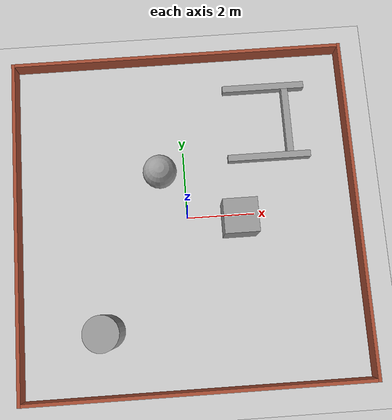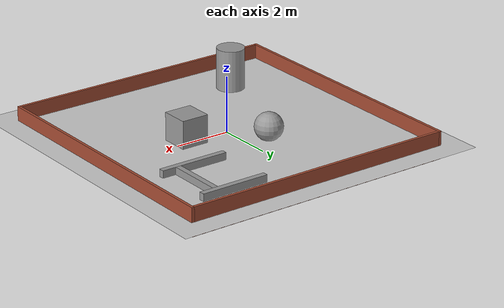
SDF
<sdf version="1.7">
 <world name="default">
  <light name="sun" type="directional">
   <pose>0 0 10 0 -0 0</pose>
   <diffuse>0.8 0.8 0.8 1</diffuse>
   <specular>0.2 0.2 0.2 1</specular>
   <attenuation>
    <range>1000</range>
    <constant>0.9</constant>
    <linear>0.01</linear>
    <quadratic>0.001</quadratic>
   </attenuation>
   <direction>-0.5 0.1 -0.9</direction>
   <spot><inner_angle>0</inner_angle><outer_angle>0</outer_angle><falloff>0</falloff></spot>
  </light>
  <model name="ground_plane">
   <static>1</static>
   <link name="link">
    <collision name="collision">
     <geometry><plane><normal>0 0 1</normal><size>100 100</size></plane></geometry>
     <surface><friction><ode><mu>100</mu><mu2>50</mu2></ode></friction></surface>
    </collision>
    <visual name="visual">
     <cast_shadows>0</cast_shadows>
     <geometry><plane><normal>0 0 1</normal><size>100 100</size></plane></geometry>
     <material>
      <script><uri>file://media/materials/scripts/gazebo.material</uri><name>Gazebo/Grey</name></script>
     </material>
    </visual>
   </link>
  </model>
  <model name="boundary_wall_1">
   <pose>0 5 0 0 0 0</pose>
   <static>1</static>
   <link name="link">
    <collision name="collision"><geometry><box><size>9.9 0.1 1</size></box></geometry></collision>
    <visual name="visual">
     <geometry><box><size>9.9 0.1 1</size></box></geometry>
     <material>
      <script><name>Gazebo/Bricks</name><uri>file://media/materials/scripts/gazebo.material</uri></script>
     </material>
    </visual>
   </link>
  </model>
  <model name="boundary_wall_2">
   <pose>0 -5 0 0 0 0</pose>
   <static>1</static>
   <link name="link">
    <collision name="collision"><geometry><box><size>9.9 0.1 1</size></box></geometry></collision>
    <visual name="visual">
     <geometry><box><size>9.9 0.1 1</size></box></geometry>
     <material>
      <script><name>Gazebo/Bricks</name><uri>file://media/materials/scripts/gazebo.material</uri></script>
     </material>
    </visual>
   </link>
  </model>
  <model name="boundary_wall_3">
   <pose>-5 0 0 0 0 0</pose>
   <static>1</static>
   <link name="link">
    <collision name="collision"><geometry><box><size>0.1 10.1 1</size></box></geometry></collision>
    <visual name="visual">
     <geometry><box><size>0.1 10.1 1</size></box></geometry>
     <material>
      <script><name>Gazebo/Bricks</name><uri>file://media/materials/scripts/gazebo.material</uri></script>
     </material>
    </visual>
   </link>
  </model>
  <model name="boundary_wall_4">
   <pose>5 0 0 0 0 0</pose>
   <static>1</static>
   <link name="link">
    <collision name="collision"><geometry><box><size>0.1 10.1 1</size></box></geometry></collision>
    <visual name="visual">
     <geometry><box><size>0.1 10.1 1</size></box></geometry>
     <material>
      <script><name>Gazebo/Bricks</name><uri>file://media/materials/scripts/gazebo.material</uri></script>
     </material>
    </visual>
   </link>
  </model>
  <gravity>0 0 -9.8</gravity>
  <magnetic_field>6e-06 2.3e-05 -4.2e-05</magnetic_field>
  <atmosphere type="adiabatic"/>
  <physics type="ode">
   <max_step_size>0.001</max_step_size>
   <real_time_factor>1</real_time_factor>
   <real_time_update_rate>1000</real_time_update_rate>
  </physics>
  <scene><ambient>0.4 0.4 0.4 1</ambient><background>0.7 0.7 0.7 1</background><shadows>1</shadows></scene>
  <spherical_coordinates>
   <surface_model>EARTH_WGS84</surface_model>
   <latitude_deg>0</latitude_deg>
   <longitude_deg>0</longitude_deg>
   <elevation>0</elevation>
   <heading_deg>0</heading_deg>
  </spherical_coordinates>
  <model name="unit_box">
   <pose>1.51272 -0.181418 0.499995 0 1e-05 0</pose>
   <static>1</static>
   <link name="link">
    <inertial>
     <mass>1</mass>
     <inertia>
      <ixx>0.166667</ixx>
      <ixy>0</ixy>
      <ixz>0</ixz>
      <iyy>0.166667</iyy>
      <iyz>0</iyz>
      <izz>0.166667</izz>
     </inertia>
    </inertial>
    <collision name="collision"><geometry><box><size>1 1 1</size></box></geometry></collision>
    <visual name="visual">
     <geometry><box><size>1 1 1</size></box></geometry>
     <material>
      <script><name>Gazebo/Grey</name><uri>file://media/materials/scripts/gazebo.material</uri></script>
     </material>
    </visual>
    <velocity>0 0 0 0 -0 0</velocity>
    <acceleration>0 0 0 0 -0 0</acceleration>
    <wrench>0 0 0 0 -0 0</wrench>
   </link>
  </model>
  <model name="unit_cylinder">
   <pose>-2.51271 -3.181418 0.75 0 -0 0</pose>
   <static>1</static>
   <link name="link">
    <inertial>
     <mass>1</mass>
     <inertia>
      <ixx>0.166667</ixx>
      <ixy>0</ixy>
      <ixz>0</ixz>
      <iyy>0.166667</iyy>
      <iyz>0</iyz>
      <izz>0.166667</izz>
     </inertia>
    </inertial>
    <collision name="collision">
     <geometry><cylinder><radius>0.5</radius><length>1.5</length></cylinder></geometry>
    </collision>
    <visual name="visual">
     <geometry><cylinder><radius>0.5</radius><length>1.5</length></cylinder></geometry>
     <material>
      <script><name>Gazebo/Grey</name><uri>file://media/materials/scripts/gazebo.material</uri></script>
     </material>
    </visual>
    <velocity>0 0 0 0 -0 0</velocity>
    <acceleration>0 0 0 0 -0 0</acceleration>
    <wrench>0 0 0 0 -0 0</wrench>
   </link>
  </model>
  <model name="unit_sphere">
   <pose>-0.725833 1.36206 0.5 0 -0 0</pose>
   <static>1</static>
   <link name="link">
    <inertial>
     <mass>1</mass>
     <inertia><ixx>0.1</ixx><ixy>0</ixy><ixz>0</ixz><iyy>0.1</iyy><iyz>0</iyz><izz>0.1</izz></inertia>
    </inertial>
    <collision name="collision"><geometry><sphere><radius>0.5</radius></sphere></geometry></collision>
    <visual name="visual">
     <geometry><sphere><radius>0.5</radius></sphere></geometry>
     <material>
      <script><name>Gazebo/Grey</name><uri>file://media/materials/scripts/gazebo.material</uri></script>
     </material>
    </visual>
    <velocity>0 0 0 0 -0 0</velocity>
    <acceleration>0 0 0 0 -0 0</acceleration>
    <wrench>0 0 0 0 -0 0</wrench>
   </link>
  </model>
  <model name="U_shaped_wall_1">
   <pose>3.25 2.8 0 0 -0 0</pose>
   <static>1</static>
   <link name="link">
    <inertial>
     <mass>1</mass>
     <inertia>
      <ixx>0.166667</ixx>
      <ixy>0</ixy>
      <ixz>0</ixz>
      <iyy>0.166667</iyy>
      <iyz>0</iyz>
      <izz>0.166667</izz>
     </inertia>
    </inertial>
    <collision name="collision"><geometry><box><size>0.2 2 0.5</size></box></geometry></collision>
    <visual name="visual">
     <geometry><box><size>0.2 2 0.5</size></box></geometry>
     <material>
      <script><name>Gazebo/Grey</name><uri>file://media/materials/scripts/gazebo.material</uri></script>
     </material>
    </visual>
    <velocity>0 0 0 0 -0 0</velocity>
    <acceleration>0 0 0 0 -0 0</acceleration>
    <wrench>0 0 0 0 -0 0</wrench>
   </link>
  </model>
  <model name="U_shaped_wall_2">
   <pose>2.6 1.7 0 0 -0 0</pose>
   <static>1</static>
   <link name="link">
    <inertial>
     <mass>1</mass>
     <inertia>
      <ixx>0.166667</ixx>
      <ixy>0</ixy>
      <ixz>0</ixz>
      <iyy>0.166667</iyy>
      <iyz>0</iyz>
      <izz>0.166667</izz>
     </inertia>
    </inertial>
    <collision name="collision"><geometry><box><size>2.5 0.2 0.5</size></box></geometry></collision>
    <visual name="visual">
     <geometry><box><size>2.5 0.2 0.5</size></box></geometry>
     <material>
      <script><name>Gazebo/Grey</name><uri>file://media/materials/scripts/gazebo.material</uri></script>
     </material>
    </visual>
    <velocity>0 0 0 0 -0 0</velocity>
    <acceleration>0 0 0 0 -0 0</acceleration>
    <wrench>0 0 0 0 -0 0</wrench>
   </link>
  </model>
  <model name="U_shaped_wall_3">
   <pose>2.6 3.9 0 0 -0 0</pose>
   <static>1</static>
   <link name="link">
    <inertial>
     <mass>1</mass>
     <inertia>
      <ixx>0.166667</ixx>
      <ixy>0</ixy>
      <ixz>0</ixz>
      <iyy>0.166667</iyy>
      <iyz>0</iyz>
      <izz>0.166667</izz>
     </inertia>
    </inertial>
    <collision name="collision"><geometry><box><size>2.5 0.2 0.5</size></box></geometry></collision>
    <visual name="visual">
     <geometry><box><size>2.5 0.2 0.5</size></box></geometry>
     <material>
      <script><name>Gazebo/Grey</name><uri>file://media/materials/scripts/gazebo.material</uri></script>
     </material>
    </visual>
    <velocity>0 0 0 0 -0 0</velocity>
    <acceleration>0 0 0 0 -0 0</acceleration>
    <wrench>0 0 0 0 -0 0</wrench>
   </link>
  </model>
 </world>
</sdf>
